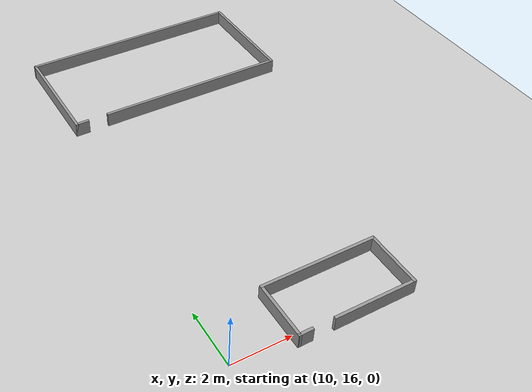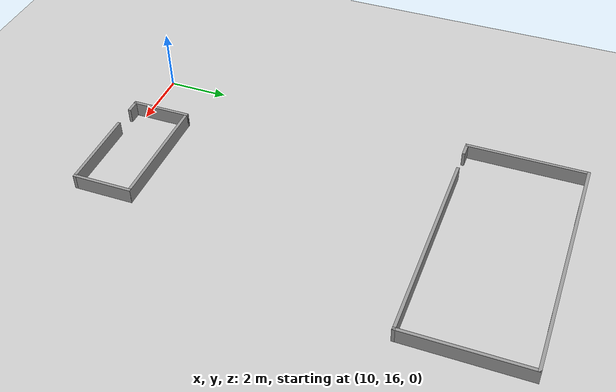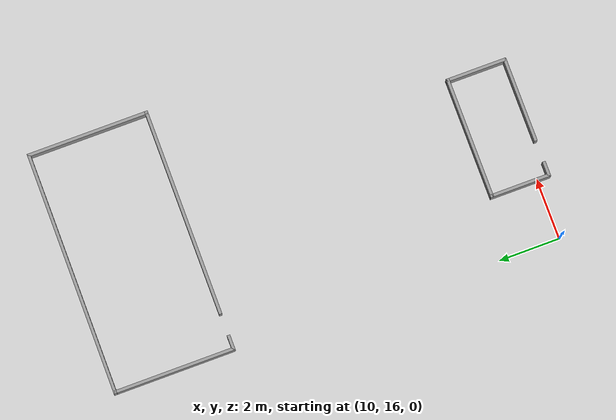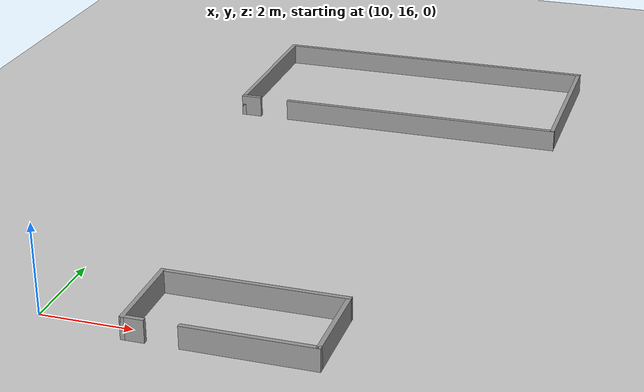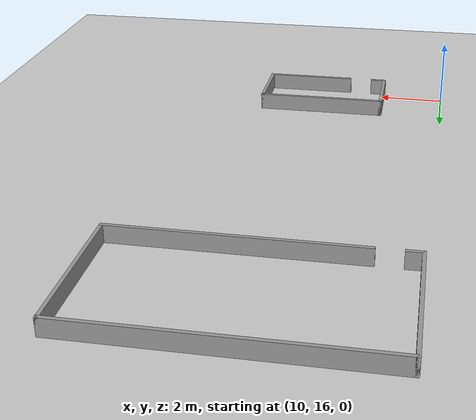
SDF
<sdf version="1.6">
 <world name="default">
  <model name="ground_plane">
   <static>1</static>
   <link name="link">
    <collision name="collision">
     <geometry><plane><normal>0 0 1</normal><size>80 80</size></plane></geometry>
     <surface>
      <contact><collide_bitmask>65535</collide_bitmask></contact>
      <friction><ode><mu>100</mu><mu2>50</mu2></ode></friction>
     </surface>
     <max_contacts>15</max_contacts>
    </collision>
    <visual name="visual">
     <cast_shadows>0</cast_shadows>
     <geometry><plane><normal>0 0 1</normal><size>80 80</size></plane></geometry>
     <material>
      <script><uri>file://media/materials/scripts/gazebo.material</uri><name>Gazebo/Grey</name></script>
     </material>
    </visual>
   </link>
  </model>
  <model name="shape3">
   <pose>14.2 28.7 0 0 -0 0</pose>
   <link name="Wall_11">
    <collision name="Wall_11_Collision">
     <geometry><box><size>4 0.1 0.5</size></box></geometry>
     <pose>0 0 0.25 0 -0 0</pose>
    </collision>
    <visual name="Wall_11_Visual">
     <pose>0 0 0.25 0 -0 0</pose>
     <geometry><box><size>4 0.1 0.5</size></box></geometry>
     <material>
      <script><uri>file://media/materials/scripts/gazebo.material</uri><name>Gazebo/Grey</name></script>
      <ambient>1 1 1 1</ambient>
     </material>
     <meta><layer>0</layer></meta>
    </visual>
    <pose>-3.95 0 0 0 -0 -1.5708</pose>
   </link>
   <link name="Wall_12">
    <collision name="Wall_12_Collision">
     <geometry><box><size>0.5 0.1 0.5</size></box></geometry>
     <pose>0 0 0.25 0 -0 0</pose>
    </collision>
    <visual name="Wall_12_Visual">
     <pose>0 0 0.25 0 -0 0</pose>
     <geometry><box><size>0.5 0.1 0.5</size></box></geometry>
     <material>
      <script><uri>file://media/materials/scripts/gazebo.material</uri><name>Gazebo/Grey</name></script>
      <ambient>1 1 1 1</ambient>
     </material>
     <meta><layer>0</layer></meta>
    </visual>
    <pose>-3.75 -1.95 0 0 -0 0</pose>
   </link>
   <link name="Wall_7">
    <collision name="Wall_7_Collision">
     <geometry><box><size>8 0.1 0.5</size></box></geometry>
     <pose>0 0 0.25 0 -0 0</pose>
    </collision>
    <visual name="Wall_7_Visual">
     <pose>0 0 0.25 0 -0 0</pose>
     <geometry><box><size>8 0.1 0.5</size></box></geometry>
     <material>
      <script><uri>file://media/materials/scripts/gazebo.material</uri><name>Gazebo/Grey</name></script>
      <ambient>1 1 1 1</ambient>
     </material>
     <meta><layer>0</layer></meta>
    </visual>
    <pose>-0 1.95 0 0 -0 0</pose>
   </link>
   <link name="Wall_8">
    <collision name="Wall_8_Collision">
     <geometry><box><size>4 0.1 0.5</size></box></geometry>
     <pose>0 0 0.25 0 -0 0</pose>
    </collision>
    <visual name="Wall_8_Visual">
     <pose>0 0 0.25 0 -0 0</pose>
     <geometry><box><size>4 0.1 0.5</size></box></geometry>
     <material>
      <script><uri>file://media/materials/scripts/gazebo.material</uri><name>Gazebo/Grey</name></script>
      <ambient>1 1 1 1</ambient>
     </material>
     <meta><layer>0</layer></meta>
    </visual>
    <pose>3.95 0 0 0 -0 -1.5708</pose>
   </link>
   <link name="Wall_9">
    <collision name="Wall_9_Collision">
     <geometry><box><size>6.8 0.1 0.5</size></box></geometry>
     <pose>0 0 0.25 0 -0 0</pose>
    </collision>
    <visual name="Wall_9_Visual">
     <pose>0 0 0.25 0 -0 0</pose>
     <geometry><box><size>6.8 0.1 0.5</size></box></geometry>
     <material>
      <script><uri>file://media/materials/scripts/gazebo.material</uri><name>Gazebo/Grey</name></script>
      <ambient>1 1 1 1</ambient>
     </material>
     <meta><layer>0</layer></meta>
    </visual>
    <pose>0.6 -1.95 0 0 -0 3.14159</pose>
   </link>
   <static>1</static>
  </model>
  <model name="shape2">
   <pose>13.9 16.6 0 0 -0 0</pose>
   <link name="Wall_0">
    <collision name="Wall_0_Collision">
     <geometry><box><size>3.98685 0.1 0.5</size></box></geometry>
     <pose>0 0 0.25 0 -0 0</pose>
    </collision>
    <visual name="Wall_0_Visual">
     <pose>0 0 0.25 0 -0 0</pose>
     <geometry><box><size>3.98685 0.1 0.5</size></box></geometry>
     <material>
      <script><uri>file://media/materials/scripts/gazebo.material</uri><name>Gazebo/Grey</name></script>
      <ambient>1 1 1 1</ambient>
     </material>
     <meta><layer>0</layer></meta>
    </visual>
    <pose>0.003288 0.95 0 0 -0 0</pose>
   </link>
   <link name="Wall_1">
    <collision name="Wall_1_Collision">
     <geometry><box><size>2 0.1 0.5</size></box></geometry>
     <pose>0 0 0.25 0 -0 0</pose>
    </collision>
    <visual name="Wall_1_Visual">
     <pose>0 0 0.25 0 -0 0</pose>
     <geometry><box><size>2 0.1 0.5</size></box></geometry>
     <material>
      <script><uri>file://media/materials/scripts/gazebo.material</uri><name>Gazebo/Grey</name></script>
      <ambient>1 1 1 1</ambient>
     </material>
     <meta><layer>0</layer></meta>
    </visual>
    <pose>1.94671 0 0 0 -0 -1.5708</pose>
   </link>
   <link name="Wall_2">
    <collision name="Wall_2_Collision">
     <geometry><box><size>2.8 0.1 0.5</size></box></geometry>
     <pose>0 0 0.25 0 -0 0</pose>
    </collision>
    <visual name="Wall_2_Visual">
     <pose>0 0 0.25 0 -0 0</pose>
     <geometry><box><size>2.8 0.1 0.5</size></box></geometry>
     <material>
      <script><uri>file://media/materials/scripts/gazebo.material</uri><name>Gazebo/Grey</name></script>
      <ambient>1 1 1 1</ambient>
     </material>
     <meta><layer>0</layer></meta>
    </visual>
    <pose>0.596712 -0.95 0 0 -0 3.14159</pose>
   </link>
   <link name="Wall_4">
    <collision name="Wall_4_Collision">
     <geometry><box><size>2 0.1 0.5</size></box></geometry>
     <pose>0 0 0.25 0 -0 0</pose>
    </collision>
    <visual name="Wall_4_Visual">
     <pose>0 0 0.25 0 -0 0</pose>
     <geometry><box><size>2 0.1 0.5</size></box></geometry>
     <material>
      <script><uri>file://media/materials/scripts/gazebo.material</uri><name>Gazebo/Grey</name></script>
      <ambient>1 1 1 1</ambient>
     </material>
     <meta><layer>0</layer></meta>
    </visual>
    <pose>-1.94671 0 0 0 -0 -1.5708</pose>
   </link>
   <link name="Wall_5">
    <collision name="Wall_5_Collision">
     <geometry><box><size>0.5 0.1 0.5</size></box></geometry>
     <pose>0 0 0.25 0 -0 0</pose>
    </collision>
    <visual name="Wall_5_Visual">
     <pose>0 0 0.25 0 -0 0</pose>
     <geometry><box><size>0.5 0.1 0.5</size></box></geometry>
     <material>
      <script><uri>file://media/materials/scripts/gazebo.material</uri><name>Gazebo/Grey</name></script>
      <ambient>1 1 1 1</ambient>
     </material>
     <meta><layer>0</layer></meta>
    </visual>
    <pose>-1.74671 -0.95 0 0 -0 0</pose>
   </link>
   <static>1</static>
  </model>
 </world>
</sdf>
